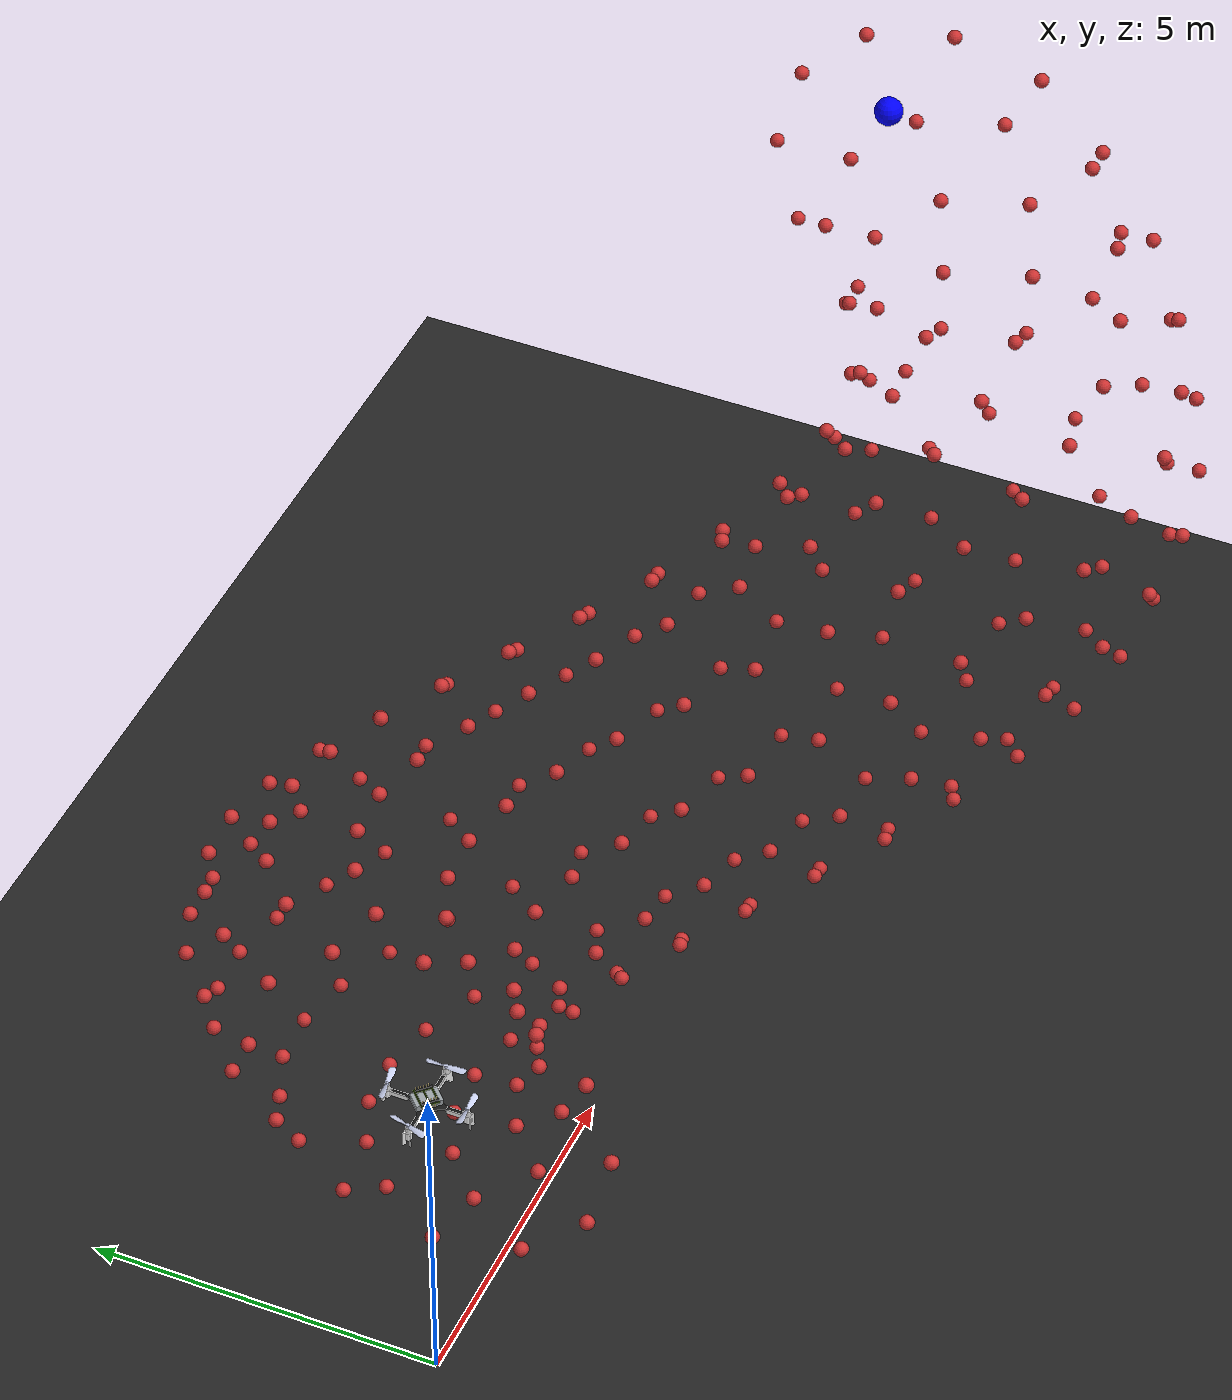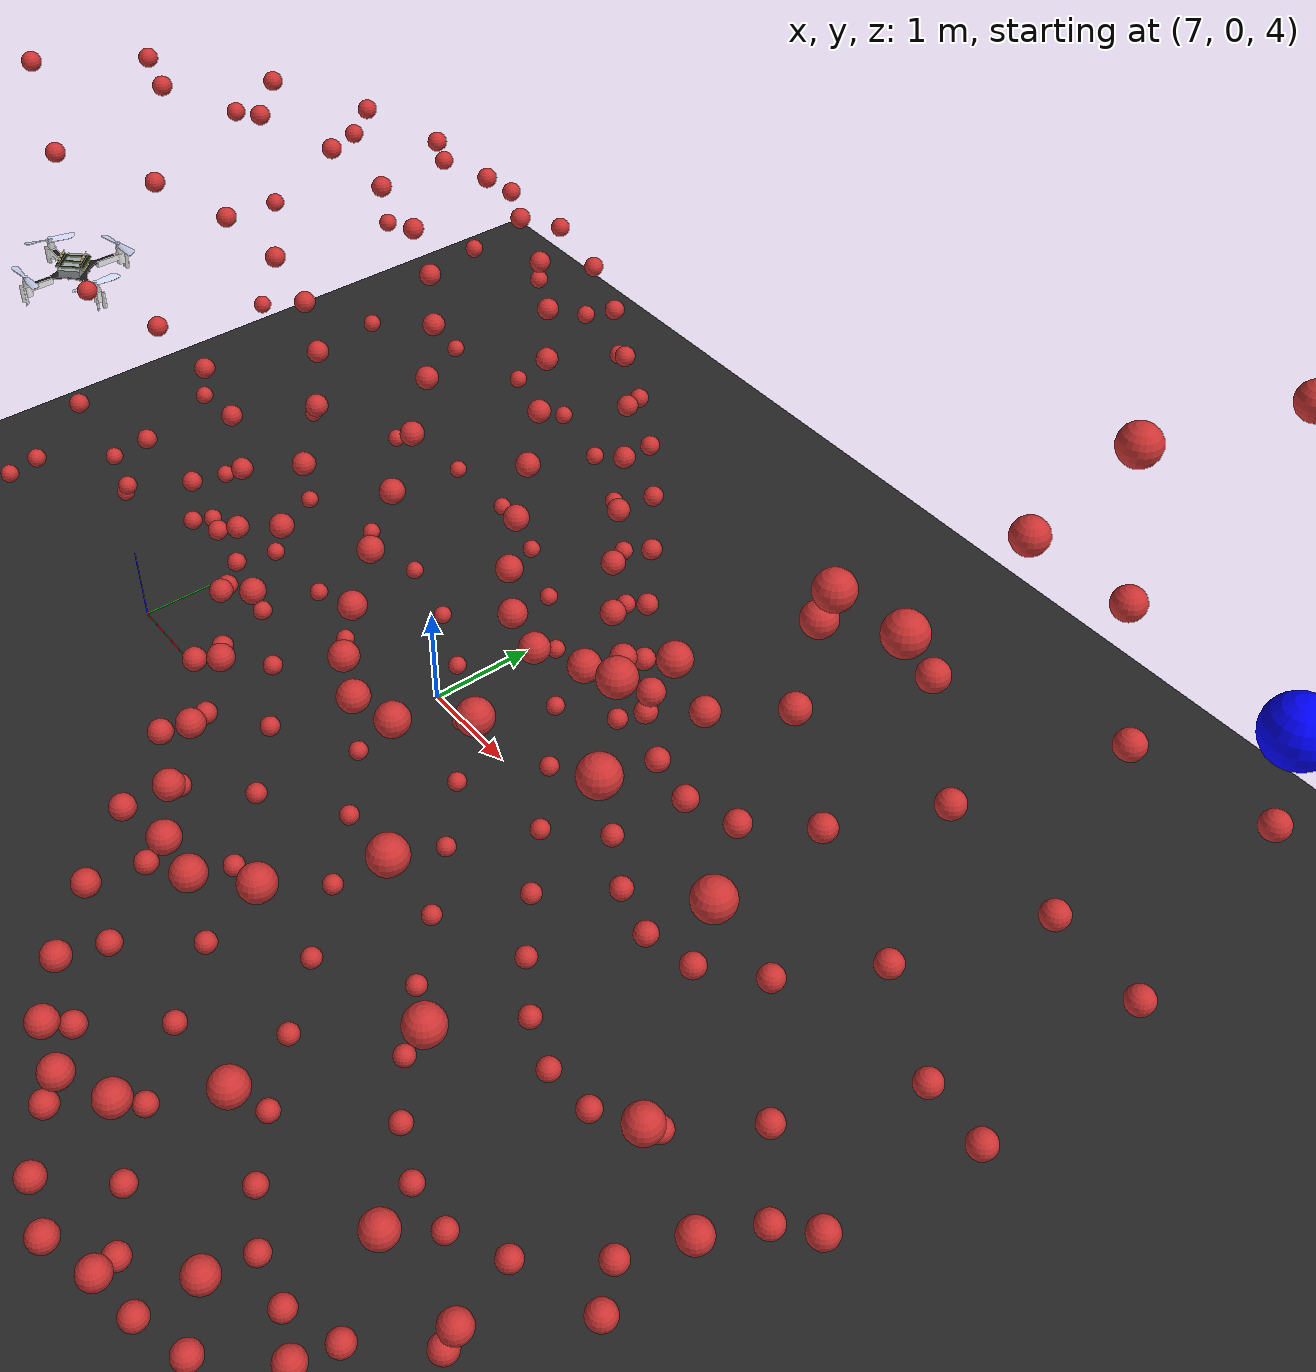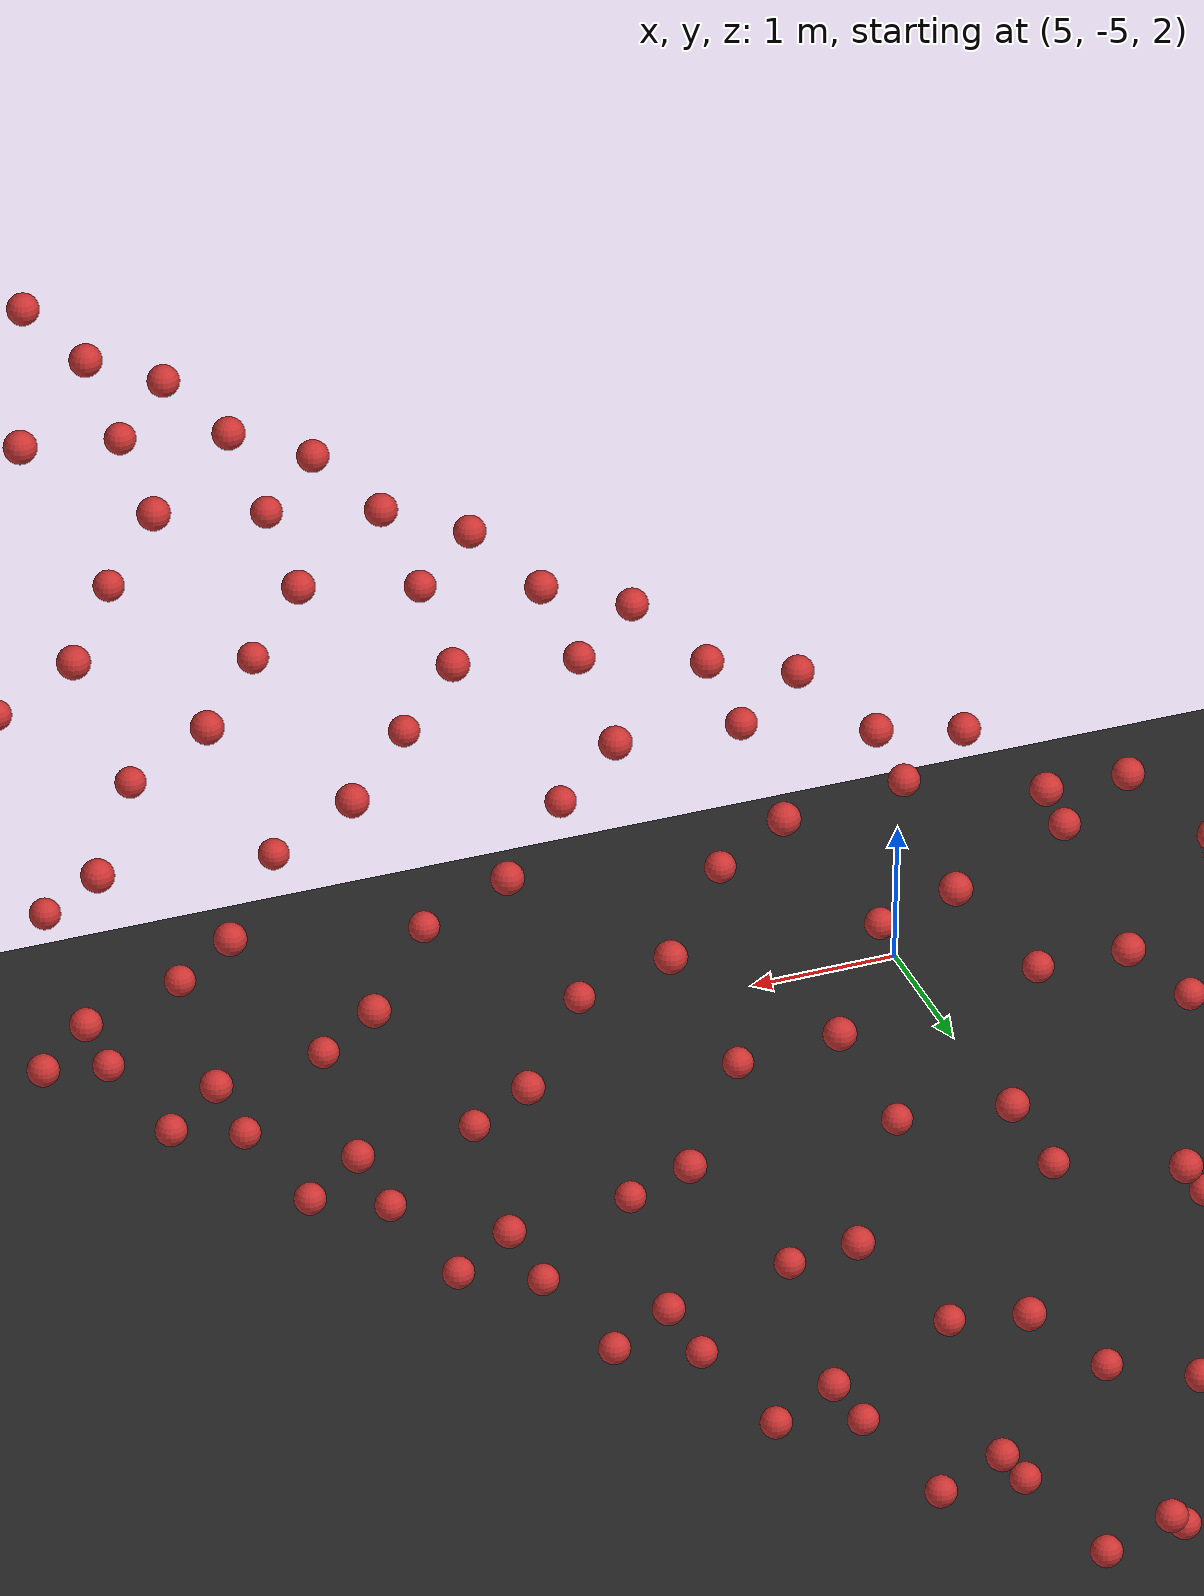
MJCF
<?xml version="1.0" ?>
<mujoco model="CF2 scene">

  <include file="cf2.xml"/>

  <statistic center="0 0 0.1" extent="0.2" meansize=".05"/>

  <visual>

    <rgba haze="0.15 0.25 0.35 0"/>

    <global azimuth="-20" elevation="-20" ellipsoidinertia="true"/>

    <map zfar="1000"/>

  </visual>

  <asset>

    <texture type="skybox" builtin="gradient" rgb1="0.3 0.5 0.7" rgb2="0 0 0" width="512" height="3072"/>

    <texture type="2d" name="groundplane" builtin="checker" mark="edge" rgb1="0.1 0.1 0.1" rgb2="0.2 0.2 0.2" markrgb="0.8 0.8 0.8" width="300" height="300"/>

    <material name="groundplane" texture="groundplane" texuniform="true" texrepeat="5 5" reflectance="0.1"/>

  </asset>

  <worldbody>

    <light diffuse="1 1 1" ambient="1 1 1" pos="0 0 100" dir="0 0 -1" directional="false"/>

    <geom name="floor" size="0 0 0.05" type="plane" material="groundplane"/>

    <site name="x_axis" size="0.005" type="cylinder" fromto="0 0 0 1 0 0" rgba="1 0 0 1"/>

    <site name="y_axis" size="0.005" type="cylinder" fromto="0 0 0 0 1 0" rgba="0 1 0 1"/>

    <site name="z_axis" size="0.005" type="cylinder" fromto="0 0 0 0 0 1" rgba="0 0 1 1"/>

    <site name="target" size="0.2" type="sphere" pos="15 0 10" rgba="0 0 1 1"/>

    <camera name="cam_aux" pos="-3.429 -18.876 13.649" xyaxes="0.874 -0.486 -0.000 0.179 0.321 0.930"/>

    <body name="sphere_0_0" pos="0.0 2.5 5.0">
      <geom type="sphere" size="0.1" rgba="0.8 0.2 0.2 1"/>
    </body>
    <body name="sphere_0_1" pos="0.0 2.165063509461097 6.25">
      <geom type="sphere" size="0.1" rgba="0.8 0.2 0.2 1"/>
    </body>
    <body name="sphere_0_2" pos="0.0 1.2500000000000002 7.165063509461096">
      <geom type="sphere" size="0.1" rgba="0.8 0.2 0.2 1"/>
    </body>
    <body name="sphere_0_3" pos="0.0 1.5308084989341916e-16 7.5">
      <geom type="sphere" size="0.1" rgba="0.8 0.2 0.2 1"/>
    </body>
    <body name="sphere_0_4" pos="0.0 -1.2499999999999996 7.165063509461097">
      <geom type="sphere" size="0.1" rgba="0.8 0.2 0.2 1"/>
    </body>
    <body name="sphere_0_5" pos="0.0 -2.165063509461097 6.25">
      <geom type="sphere" size="0.1" rgba="0.8 0.2 0.2 1"/>
    </body>
    <body name="sphere_0_6" pos="0.0 -2.5 5.0">
      <geom type="sphere" size="0.1" rgba="0.8 0.2 0.2 1"/>
    </body>
    <body name="sphere_0_7" pos="0.0 -2.1650635094610973 3.750000000000001">
      <geom type="sphere" size="0.1" rgba="0.8 0.2 0.2 1"/>
    </body>
    <body name="sphere_0_8" pos="0.0 -1.250000000000001 2.834936490538904">
      <geom type="sphere" size="0.1" rgba="0.8 0.2 0.2 1"/>
    </body>
    <body name="sphere_0_9" pos="0.0 -4.592425496802574e-16 2.5">
      <geom type="sphere" size="0.1" rgba="0.8 0.2 0.2 1"/>
    </body>
    <body name="sphere_0_10" pos="0.0 1.2500000000000002 2.8349364905389036">
      <geom type="sphere" size="0.1" rgba="0.8 0.2 0.2 1"/>
    </body>
    <body name="sphere_0_11" pos="0.0 2.165063509461096 3.749999999999999">
      <geom type="sphere" size="0.1" rgba="0.8 0.2 0.2 1"/>
    </body>
    <body name="sphere_1_0" pos="0.7648415591482625 3.5201185407796975 4.727449992218893">
      <geom type="sphere" size="0.1" rgba="0.8 0.2 0.2 1"/>
    </body>
    <body name="sphere_1_1" pos="0.7648415591482625 3.1851820502407944 5.977449992218893">
      <geom type="sphere" size="0.1" rgba="0.8 0.2 0.2 1"/>
    </body>
    <body name="sphere_1_2" pos="0.7648415591482625 2.2701185407796975 6.892513501679989">
      <geom type="sphere" size="0.1" rgba="0.8 0.2 0.2 1"/>
    </body>
    <body name="sphere_1_3" pos="0.7648415591482625 1.0201185407796978 7.227449992218893">
      <geom type="sphere" size="0.1" rgba="0.8 0.2 0.2 1"/>
    </body>
    <body name="sphere_1_4" pos="0.7648415591482625 -0.229881459220302 6.892513501679989">
      <geom type="sphere" size="0.1" rgba="0.8 0.2 0.2 1"/>
    </body>
    <body name="sphere_1_5" pos="0.7648415591482625 -1.1449449686813993 5.977449992218893">
      <geom type="sphere" size="0.1" rgba="0.8 0.2 0.2 1"/>
    </body>
    <body name="sphere_1_6" pos="0.7648415591482625 -1.4798814592203025 4.727449992218893">
      <geom type="sphere" size="0.1" rgba="0.8 0.2 0.2 1"/>
    </body>
    <body name="sphere_1_7" pos="0.7648415591482625 -1.1449449686813997 3.4774499922188937">
      <geom type="sphere" size="0.1" rgba="0.8 0.2 0.2 1"/>
    </body>
    <body name="sphere_1_8" pos="0.7648415591482625 -0.22988145922030356 2.562386482757797">
      <geom type="sphere" size="0.1" rgba="0.8 0.2 0.2 1"/>
    </body>
    <body name="sphere_1_9" pos="0.7648415591482625 1.020118540779697 2.227449992218893">
      <geom type="sphere" size="0.1" rgba="0.8 0.2 0.2 1"/>
    </body>
    <body name="sphere_1_10" pos="0.7648415591482625 2.2701185407796975 2.5623864827577965">
      <geom type="sphere" size="0.1" rgba="0.8 0.2 0.2 1"/>
    </body>
    <body name="sphere_1_11" pos="0.7648415591482625 3.1851820502407935 3.477449992218892">
      <geom type="sphere" size="0.1" rgba="0.8 0.2 0.2 1"/>
    </body>
    <body name="sphere_2_0" pos="1.5426688062133425 4.1840582129838335 4.5153452698601155">
      <geom type="sphere" size="0.1" rgba="0.8 0.2 0.2 1"/>
    </body>
    <body name="sphere_2_1" pos="1.5426688062133425 3.84912172244493 5.7653452698601155">
      <geom type="sphere" size="0.1" rgba="0.8 0.2 0.2 1"/>
    </body>
    <body name="sphere_2_2" pos="1.5426688062133425 2.9340582129838335 6.680408779321212">
      <geom type="sphere" size="0.1" rgba="0.8 0.2 0.2 1"/>
    </body>
    <body name="sphere_2_3" pos="1.5426688062133425 1.6840582129838333 7.0153452698601155">
      <geom type="sphere" size="0.1" rgba="0.8 0.2 0.2 1"/>
    </body>
    <body name="sphere_2_4" pos="1.5426688062133425 0.4340582129838335 6.680408779321212">
      <geom type="sphere" size="0.1" rgba="0.8 0.2 0.2 1"/>
    </body>
    <body name="sphere_2_5" pos="1.5426688062133425 -0.48100529647726376 5.7653452698601155">
      <geom type="sphere" size="0.1" rgba="0.8 0.2 0.2 1"/>
    </body>
    <body name="sphere_2_6" pos="1.5426688062133425 -0.8159417870161669 4.5153452698601155">
      <geom type="sphere" size="0.1" rgba="0.8 0.2 0.2 1"/>
    </body>
    <body name="sphere_2_7" pos="1.5426688062133425 -0.4810052964772642 3.2653452698601164">
      <geom type="sphere" size="0.1" rgba="0.8 0.2 0.2 1"/>
    </body>
    <body name="sphere_2_8" pos="1.5426688062133425 0.43405821298383196 2.3502817603990196">
      <geom type="sphere" size="0.1" rgba="0.8 0.2 0.2 1"/>
    </body>
    <body name="sphere_2_9" pos="1.5426688062133425 1.6840582129838326 2.0153452698601155">
      <geom type="sphere" size="0.1" rgba="0.8 0.2 0.2 1"/>
    </body>
    <body name="sphere_2_10" pos="1.5426688062133425 2.9340582129838335 2.350281760399019">
      <geom type="sphere" size="0.1" rgba="0.8 0.2 0.2 1"/>
    </body>
    <body name="sphere_2_11" pos="1.5426688062133425 3.849121722444929 3.2653452698601146">
      <geom type="sphere" size="0.1" rgba="0.8 0.2 0.2 1"/>
    </body>
    <body name="sphere_3_0" pos="2.3311628683529513 4.533558727773604 4.362912875309569">
      <geom type="sphere" size="0.1" rgba="0.8 0.2 0.2 1"/>
    </body>
    <body name="sphere_3_1" pos="2.3311628683529513 4.1986222372347015 5.612912875309569">
      <geom type="sphere" size="0.1" rgba="0.8 0.2 0.2 1"/>
    </body>
    <body name="sphere_3_2" pos="2.3311628683529513 3.283558727773605 6.527976384770666">
      <geom type="sphere" size="0.1" rgba="0.8 0.2 0.2 1"/>
    </body>
    <body name="sphere_3_3" pos="2.3311628683529513 2.0335587277736047 6.862912875309569">
      <geom type="sphere" size="0.1" rgba="0.8 0.2 0.2 1"/>
    </body>
    <body name="sphere_3_4" pos="2.3311628683529513 0.7835587277736051 6.527976384770666">
      <geom type="sphere" size="0.1" rgba="0.8 0.2 0.2 1"/>
    </body>
    <body name="sphere_3_5" pos="2.3311628683529513 -0.13150478168749213 5.612912875309569">
      <geom type="sphere" size="0.1" rgba="0.8 0.2 0.2 1"/>
    </body>
    <body name="sphere_3_6" pos="2.3311628683529513 -0.4664412722263953 4.362912875309569">
      <geom type="sphere" size="0.1" rgba="0.8 0.2 0.2 1"/>
    </body>
    <body name="sphere_3_7" pos="2.3311628683529513 -0.13150478168749258 3.1129128753095703">
      <geom type="sphere" size="0.1" rgba="0.8 0.2 0.2 1"/>
    </body>
    <body name="sphere_3_8" pos="2.3311628683529513 0.7835587277736036 2.1978493658484735">
      <geom type="sphere" size="0.1" rgba="0.8 0.2 0.2 1"/>
    </body>
    <body name="sphere_3_9" pos="2.3311628683529513 2.0335587277736042 1.8629128753095694">
      <geom type="sphere" size="0.1" rgba="0.8 0.2 0.2 1"/>
    </body>
    <body name="sphere_3_10" pos="2.3311628683529513 3.283558727773605 2.197849365848473">
      <geom type="sphere" size="0.1" rgba="0.8 0.2 0.2 1"/>
    </body>
    <body name="sphere_3_11" pos="2.3311628683529513 4.198622237234701 3.1129128753095685">
      <geom type="sphere" size="0.1" rgba="0.8 0.2 0.2 1"/>
    </body>
    <body name="sphere_4_0" pos="3.1280048727247993 4.61035979631021 4.26937985095316">
      <geom type="sphere" size="0.1" rgba="0.8 0.2 0.2 1"/>
    </body>
    <body name="sphere_4_1" pos="3.1280048727247993 4.275423305771307 5.51937985095316">
      <geom type="sphere" size="0.1" rgba="0.8 0.2 0.2 1"/>
    </body>
    <body name="sphere_4_2" pos="3.1280048727247993 3.3603597963102096 6.434443360414257">
      <geom type="sphere" size="0.1" rgba="0.8 0.2 0.2 1"/>
    </body>
    <body name="sphere_4_3" pos="3.1280048727247993 2.1103597963102096 6.76937985095316">
      <geom type="sphere" size="0.1" rgba="0.8 0.2 0.2 1"/>
    </body>
    <body name="sphere_4_4" pos="3.1280048727247993 0.8603597963102101 6.434443360414257">
      <geom type="sphere" size="0.1" rgba="0.8 0.2 0.2 1"/>
    </body>
    <body name="sphere_4_5" pos="3.1280048727247993 -0.05470371315088718 5.51937985095316">
      <geom type="sphere" size="0.1" rgba="0.8 0.2 0.2 1"/>
    </body>
    <body name="sphere_4_6" pos="3.1280048727247993 -0.38964020368979035 4.26937985095316">
      <geom type="sphere" size="0.1" rgba="0.8 0.2 0.2 1"/>
    </body>
    <body name="sphere_4_7" pos="3.1280048727247993 -0.05470371315088762 3.019379850953161">
      <geom type="sphere" size="0.1" rgba="0.8 0.2 0.2 1"/>
    </body>
    <body name="sphere_4_8" pos="3.1280048727247993 0.8603597963102085 2.1043163414920643">
      <geom type="sphere" size="0.1" rgba="0.8 0.2 0.2 1"/>
    </body>
    <body name="sphere_4_9" pos="3.1280048727247993 2.110359796310209 1.7693798509531602">
      <geom type="sphere" size="0.1" rgba="0.8 0.2 0.2 1"/>
    </body>
    <body name="sphere_4_10" pos="3.1280048727247993 3.3603597963102096 2.104316341492064">
      <geom type="sphere" size="0.1" rgba="0.8 0.2 0.2 1"/>
    </body>
    <body name="sphere_4_11" pos="3.1280048727247993 4.275423305771305 3.0193798509531593">
      <geom type="sphere" size="0.1" rgba="0.8 0.2 0.2 1"/>
    </body>
    <body name="sphere_5_0" pos="3.9308759464865983 4.456201129754848 4.233973239176789">
      <geom type="sphere" size="0.1" rgba="0.8 0.2 0.2 1"/>
    </body>
    <body name="sphere_5_1" pos="3.9308759464865983 4.121264639215945 5.483973239176789">
      <geom type="sphere" size="0.1" rgba="0.8 0.2 0.2 1"/>
    </body>
    <body name="sphere_5_2" pos="3.9308759464865983 3.2062011297548483 6.399036748637886">
      <geom type="sphere" size="0.1" rgba="0.8 0.2 0.2 1"/>
    </body>
    <body name="sphere_5_3" pos="3.9308759464865983 1.9562011297548483 6.733973239176789">
      <geom type="sphere" size="0.1" rgba="0.8 0.2 0.2 1"/>
    </body>
    <body name="sphere_5_4" pos="3.9308759464865983 0.7062011297548485 6.3990367486378865">
      <geom type="sphere" size="0.1" rgba="0.8 0.2 0.2 1"/>
    </body>
    <body name="sphere_5_5" pos="3.9308759464865983 -0.20886237970624877 5.483973239176789">
      <geom type="sphere" size="0.1" rgba="0.8 0.2 0.2 1"/>
    </body>
    <body name="sphere_5_6" pos="3.9308759464865983 -0.5437988702451519 4.233973239176789">
      <geom type="sphere" size="0.1" rgba="0.8 0.2 0.2 1"/>
    </body>
    <body name="sphere_5_7" pos="3.9308759464865983 -0.2088623797062492 2.98397323917679">
      <geom type="sphere" size="0.1" rgba="0.8 0.2 0.2 1"/>
    </body>
    <body name="sphere_5_8" pos="3.9308759464865983 0.706201129754847 2.0689097297156933">
      <geom type="sphere" size="0.1" rgba="0.8 0.2 0.2 1"/>
    </body>
    <body name="sphere_5_9" pos="3.9308759464865983 1.9562011297548476 1.7339732391767892">
      <geom type="sphere" size="0.1" rgba="0.8 0.2 0.2 1"/>
    </body>
    <body name="sphere_5_10" pos="3.9308759464865983 3.2062011297548483 2.068909729715693">
      <geom type="sphere" size="0.1" rgba="0.8 0.2 0.2 1"/>
    </body>
    <body name="sphere_5_11" pos="3.9308759464865983 4.121264639215944 2.9839732391767884">
      <geom type="sphere" size="0.1" rgba="0.8 0.2 0.2 1"/>
    </body>
    <body name="sphere_6_0" pos="4.73745721679606 4.1128224392687205 4.255920082366364">
      <geom type="sphere" size="0.1" rgba="0.8 0.2 0.2 1"/>
    </body>
    <body name="sphere_6_1" pos="4.73745721679606 3.7778859487298173 5.505920082366364">
      <geom type="sphere" size="0.1" rgba="0.8 0.2 0.2 1"/>
    </body>
    <body name="sphere_6_2" pos="4.73745721679606 2.8628224392687205 6.4209835918274605">
      <geom type="sphere" size="0.1" rgba="0.8 0.2 0.2 1"/>
    </body>
    <body name="sphere_6_3" pos="4.73745721679606 1.6128224392687207 6.755920082366364">
      <geom type="sphere" size="0.1" rgba="0.8 0.2 0.2 1"/>
    </body>
    <body name="sphere_6_4" pos="4.73745721679606 0.36282243926872093 6.420983591827461">
      <geom type="sphere" size="0.1" rgba="0.8 0.2 0.2 1"/>
    </body>
    <body name="sphere_6_5" pos="4.73745721679606 -0.5522410701923763 5.505920082366364">
      <geom type="sphere" size="0.1" rgba="0.8 0.2 0.2 1"/>
    </body>
    <body name="sphere_6_6" pos="4.73745721679606 -0.8871775607312795 4.255920082366364">
      <geom type="sphere" size="0.1" rgba="0.8 0.2 0.2 1"/>
    </body>
    <body name="sphere_6_7" pos="4.73745721679606 -0.5522410701923768 3.005920082366365">
      <geom type="sphere" size="0.1" rgba="0.8 0.2 0.2 1"/>
    </body>
    <body name="sphere_6_8" pos="4.73745721679606 0.3628224392687194 2.090856572905268">
      <geom type="sphere" size="0.1" rgba="0.8 0.2 0.2 1"/>
    </body>
    <body name="sphere_6_9" pos="4.73745721679606 1.61282243926872 1.755920082366364">
      <geom type="sphere" size="0.1" rgba="0.8 0.2 0.2 1"/>
    </body>
    <body name="sphere_6_10" pos="4.73745721679606 2.8628224392687205 2.0908565729052677">
      <geom type="sphere" size="0.1" rgba="0.8 0.2 0.2 1"/>
    </body>
    <body name="sphere_6_11" pos="4.73745721679606 3.7778859487298164 3.005920082366363">
      <geom type="sphere" size="0.1" rgba="0.8 0.2 0.2 1"/>
    </body>
    <body name="sphere_7_0" pos="5.545429810810894 3.621963436013022 4.334447422907783">
      <geom type="sphere" size="0.1" rgba="0.8 0.2 0.2 1"/>
    </body>
    <body name="sphere_7_1" pos="5.545429810810894 3.287026945474119 5.584447422907783">
      <geom type="sphere" size="0.1" rgba="0.8 0.2 0.2 1"/>
    </body>
    <body name="sphere_7_2" pos="5.545429810810894 2.371963436013022 6.49951093236888">
      <geom type="sphere" size="0.1" rgba="0.8 0.2 0.2 1"/>
    </body>
    <body name="sphere_7_3" pos="5.545429810810894 1.1219634360130224 6.834447422907783">
      <geom type="sphere" size="0.1" rgba="0.8 0.2 0.2 1"/>
    </body>
    <body name="sphere_7_4" pos="5.545429810810894 -0.12803656398697738 6.49951093236888">
      <geom type="sphere" size="0.1" rgba="0.8 0.2 0.2 1"/>
    </body>
    <body name="sphere_7_5" pos="5.545429810810894 -1.0431000734480746 5.584447422907783">
      <geom type="sphere" size="0.1" rgba="0.8 0.2 0.2 1"/>
    </body>
    <body name="sphere_7_6" pos="5.545429810810894 -1.3780365639869778 4.334447422907783">
      <geom type="sphere" size="0.1" rgba="0.8 0.2 0.2 1"/>
    </body>
    <body name="sphere_7_7" pos="5.545429810810894 -1.043100073448075 3.0844474229077843">
      <geom type="sphere" size="0.1" rgba="0.8 0.2 0.2 1"/>
    </body>
    <body name="sphere_7_8" pos="5.545429810810894 -0.12803656398697894 2.1693839134466875">
      <geom type="sphere" size="0.1" rgba="0.8 0.2 0.2 1"/>
    </body>
    <body name="sphere_7_9" pos="5.545429810810894 1.1219634360130217 1.8344474229077834">
      <geom type="sphere" size="0.1" rgba="0.8 0.2 0.2 1"/>
    </body>
    <body name="sphere_7_10" pos="5.545429810810894 2.371963436013022 2.169383913446687">
      <geom type="sphere" size="0.1" rgba="0.8 0.2 0.2 1"/>
    </body>
    <body name="sphere_7_11" pos="5.545429810810894 3.287026945474118 3.0844474229077825">
      <geom type="sphere" size="0.1" rgba="0.8 0.2 0.2 1"/>
    </body>
    <body name="sphere_8_0" pos="6.352474855688814 3.0253638311489555 4.468782303186957">
      <geom type="sphere" size="0.1" rgba="0.8 0.2 0.2 1"/>
    </body>
    <body name="sphere_8_1" pos="6.352474855688814 2.6904273406100523 5.718782303186957">
      <geom type="sphere" size="0.1" rgba="0.8 0.2 0.2 1"/>
    </body>
    <body name="sphere_8_2" pos="6.352474855688814 1.7753638311489557 6.633845812648054">
      <geom type="sphere" size="0.1" rgba="0.8 0.2 0.2 1"/>
    </body>
    <body name="sphere_8_3" pos="6.352474855688814 0.5253638311489556 6.968782303186957">
      <geom type="sphere" size="0.1" rgba="0.8 0.2 0.2 1"/>
    </body>
    <body name="sphere_8_4" pos="6.352474855688814 -0.7246361688510441 6.633845812648055">
      <geom type="sphere" size="0.1" rgba="0.8 0.2 0.2 1"/>
    </body>
    <body name="sphere_8_5" pos="6.352474855688814 -1.6396996783121414 5.718782303186957">
      <geom type="sphere" size="0.1" rgba="0.8 0.2 0.2 1"/>
    </body>
    <body name="sphere_8_6" pos="6.352474855688814 -1.9746361688510445 4.468782303186957">
      <geom type="sphere" size="0.1" rgba="0.8 0.2 0.2 1"/>
    </body>
    <body name="sphere_8_7" pos="6.352474855688814 -1.6396996783121418 3.2187823031869582">
      <geom type="sphere" size="0.1" rgba="0.8 0.2 0.2 1"/>
    </body>
    <body name="sphere_8_8" pos="6.352474855688814 -0.7246361688510456 2.3037187937258614">
      <geom type="sphere" size="0.1" rgba="0.8 0.2 0.2 1"/>
    </body>
    <body name="sphere_8_9" pos="6.352474855688814 0.525363831148955 1.9687823031869573">
      <geom type="sphere" size="0.1" rgba="0.8 0.2 0.2 1"/>
    </body>
    <body name="sphere_8_10" pos="6.352474855688814 1.7753638311489557 2.303718793725861">
      <geom type="sphere" size="0.1" rgba="0.8 0.2 0.2 1"/>
    </body>
    <body name="sphere_8_11" pos="6.352474855688814 2.6904273406100514 3.2187823031869565">
      <geom type="sphere" size="0.1" rgba="0.8 0.2 0.2 1"/>
    </body>
    <body name="sphere_9_0" pos="7.156273478587526 2.364763335837716 4.658151765589781">
      <geom type="sphere" size="0.1" rgba="0.8 0.2 0.2 1"/>
    </body>
    <body name="sphere_9_1" pos="7.156273478587526 2.0298268452988126 5.908151765589781">
      <geom type="sphere" size="0.1" rgba="0.8 0.2 0.2 1"/>
    </body>
    <body name="sphere_9_2" pos="7.156273478587526 1.114763335837716 6.823215275050877">
      <geom type="sphere" size="0.1" rgba="0.8 0.2 0.2 1"/>
    </body>
    <body name="sphere_9_3" pos="7.156273478587526 -0.13523666416228403 7.158151765589781">
      <geom type="sphere" size="0.1" rgba="0.8 0.2 0.2 1"/>
    </body>
    <body name="sphere_9_4" pos="7.156273478587526 -1.3852366641622837 6.823215275050877">
      <geom type="sphere" size="0.1" rgba="0.8 0.2 0.2 1"/>
    </body>
    <body name="sphere_9_5" pos="7.156273478587526 -2.300300173623381 5.908151765589781">
      <geom type="sphere" size="0.1" rgba="0.8 0.2 0.2 1"/>
    </body>
    <body name="sphere_9_6" pos="7.156273478587526 -2.635236664162284 4.658151765589781">
      <geom type="sphere" size="0.1" rgba="0.8 0.2 0.2 1"/>
    </body>
    <body name="sphere_9_7" pos="7.156273478587526 -2.3003001736233815 3.408151765589782">
      <geom type="sphere" size="0.1" rgba="0.8 0.2 0.2 1"/>
    </body>
    <body name="sphere_9_8" pos="7.156273478587526 -1.3852366641622853 2.493088256128685">
      <geom type="sphere" size="0.1" rgba="0.8 0.2 0.2 1"/>
    </body>
    <body name="sphere_9_9" pos="7.156273478587526 -0.13523666416228466 2.158151765589781">
      <geom type="sphere" size="0.1" rgba="0.8 0.2 0.2 1"/>
    </body>
    <body name="sphere_9_10" pos="7.156273478587526 1.114763335837716 2.4930882561286847">
      <geom type="sphere" size="0.1" rgba="0.8 0.2 0.2 1"/>
    </body>
    <body name="sphere_9_11" pos="7.156273478587526 2.0298268452988117 3.40815176558978">
      <geom type="sphere" size="0.1" rgba="0.8 0.2 0.2 1"/>
    </body>
    <body name="sphere_10_0" pos="7.954506806664751 1.6819016612405036 4.901782852502167">
      <geom type="sphere" size="0.1" rgba="0.8 0.2 0.2 1"/>
    </body>
    <body name="sphere_10_1" pos="7.954506806664751 1.3469651707016004 6.151782852502167">
      <geom type="sphere" size="0.1" rgba="0.8 0.2 0.2 1"/>
    </body>
    <body name="sphere_10_2" pos="7.954506806664751 0.4319016612405038 7.066846361963264">
      <geom type="sphere" size="0.1" rgba="0.8 0.2 0.2 1"/>
    </body>
    <body name="sphere_10_3" pos="7.954506806664751 -0.8180983387594963 7.401782852502167">
      <geom type="sphere" size="0.1" rgba="0.8 0.2 0.2 1"/>
    </body>
    <body name="sphere_10_4" pos="7.954506806664751 -2.068098338759496 7.066846361963265">
      <geom type="sphere" size="0.1" rgba="0.8 0.2 0.2 1"/>
    </body>
    <body name="sphere_10_5" pos="7.954506806664751 -2.9831618482205933 6.151782852502167">
      <geom type="sphere" size="0.1" rgba="0.8 0.2 0.2 1"/>
    </body>
    <body name="sphere_10_6" pos="7.954506806664751 -3.3180983387594964 4.901782852502167">
      <geom type="sphere" size="0.1" rgba="0.8 0.2 0.2 1"/>
    </body>
    <body name="sphere_10_7" pos="7.954506806664751 -2.9831618482205937 3.6517828525021683">
      <geom type="sphere" size="0.1" rgba="0.8 0.2 0.2 1"/>
    </body>
    <body name="sphere_10_8" pos="7.954506806664751 -2.068098338759498 2.7367193430410715">
      <geom type="sphere" size="0.1" rgba="0.8 0.2 0.2 1"/>
    </body>
    <body name="sphere_10_9" pos="7.954506806664751 -0.8180983387594969 2.4017828525021674">
      <geom type="sphere" size="0.1" rgba="0.8 0.2 0.2 1"/>
    </body>
    <body name="sphere_10_10" pos="7.954506806664751 0.4319016612405038 2.736719343041071">
      <geom type="sphere" size="0.1" rgba="0.8 0.2 0.2 1"/>
    </body>
    <body name="sphere_10_11" pos="7.954506806664751 1.3469651707015995 3.6517828525021665">
      <geom type="sphere" size="0.1" rgba="0.8 0.2 0.2 1"/>
    </body>
    <body name="sphere_11_0" pos="8.744855967078191 1.0185185185185186 5.198902606310014">
      <geom type="sphere" size="0.1" rgba="0.8 0.2 0.2 1"/>
    </body>
    <body name="sphere_11_1" pos="8.744855967078191 0.6835820279796154 6.448902606310014">
      <geom type="sphere" size="0.1" rgba="0.8 0.2 0.2 1"/>
    </body>
    <body name="sphere_11_2" pos="8.744855967078191 -0.23148148148148118 7.3639661157711105">
      <geom type="sphere" size="0.1" rgba="0.8 0.2 0.2 1"/>
    </body>
    <body name="sphere_11_3" pos="8.744855967078191 -1.4814814814814812 7.698902606310014">
      <geom type="sphere" size="0.1" rgba="0.8 0.2 0.2 1"/>
    </body>
    <body name="sphere_11_4" pos="8.744855967078191 -2.731481481481481 7.363966115771111">
      <geom type="sphere" size="0.1" rgba="0.8 0.2 0.2 1"/>
    </body>
    <body name="sphere_11_5" pos="8.744855967078191 -3.6465449909425782 6.448902606310014">
      <geom type="sphere" size="0.1" rgba="0.8 0.2 0.2 1"/>
    </body>
    <body name="sphere_11_6" pos="8.744855967078191 -3.9814814814814814 5.198902606310014">
      <geom type="sphere" size="0.1" rgba="0.8 0.2 0.2 1"/>
    </body>
    <body name="sphere_11_7" pos="8.744855967078191 -3.6465449909425787 3.948902606310015">
      <geom type="sphere" size="0.1" rgba="0.8 0.2 0.2 1"/>
    </body>
    <body name="sphere_11_8" pos="8.744855967078191 -2.7314814814814827 3.033839096848918">
      <geom type="sphere" size="0.1" rgba="0.8 0.2 0.2 1"/>
    </body>
    <body name="sphere_11_9" pos="8.744855967078191 -1.4814814814814818 2.698902606310014">
      <geom type="sphere" size="0.1" rgba="0.8 0.2 0.2 1"/>
    </body>
    <body name="sphere_11_10" pos="8.744855967078191 -0.23148148148148118 3.0338390968489177">
      <geom type="sphere" size="0.1" rgba="0.8 0.2 0.2 1"/>
    </body>
    <body name="sphere_11_11" pos="8.744855967078191 0.6835820279796145 3.948902606310013">
      <geom type="sphere" size="0.1" rgba="0.8 0.2 0.2 1"/>
    </body>
    <body name="sphere_12_0" pos="9.525002086985559 0.41635361883295774 5.548738069399227">
      <geom type="sphere" size="0.1" rgba="0.8 0.2 0.2 1"/>
    </body>
    <body name="sphere_12_1" pos="9.525002086985559 0.08141712829405456 6.798738069399227">
      <geom type="sphere" size="0.1" rgba="0.8 0.2 0.2 1"/>
    </body>
    <body name="sphere_12_2" pos="9.525002086985559 -0.833646381167042 7.713801578860323">
      <geom type="sphere" size="0.1" rgba="0.8 0.2 0.2 1"/>
    </body>
    <body name="sphere_12_3" pos="9.525002086985559 -2.0836463811670423 8.048738069399228">
      <geom type="sphere" size="0.1" rgba="0.8 0.2 0.2 1"/>
    </body>
    <body name="sphere_12_4" pos="9.525002086985559 -3.333646381167042 7.713801578860323">
      <geom type="sphere" size="0.1" rgba="0.8 0.2 0.2 1"/>
    </body>
    <body name="sphere_12_5" pos="9.525002086985559 -4.248709890628139 6.798738069399227">
      <geom type="sphere" size="0.1" rgba="0.8 0.2 0.2 1"/>
    </body>
    <body name="sphere_12_6" pos="9.525002086985559 -4.583646381167043 5.548738069399227">
      <geom type="sphere" size="0.1" rgba="0.8 0.2 0.2 1"/>
    </body>
    <body name="sphere_12_7" pos="9.525002086985559 -4.24870989062814 4.298738069399228">
      <geom type="sphere" size="0.1" rgba="0.8 0.2 0.2 1"/>
    </body>
    <body name="sphere_12_8" pos="9.525002086985559 -3.3336463811670436 3.383674559938131">
      <geom type="sphere" size="0.1" rgba="0.8 0.2 0.2 1"/>
    </body>
    <body name="sphere_12_9" pos="9.525002086985559 -2.0836463811670427 3.048738069399227">
      <geom type="sphere" size="0.1" rgba="0.8 0.2 0.2 1"/>
    </body>
    <body name="sphere_12_10" pos="9.525002086985559 -0.833646381167042 3.3836745599381306">
      <geom type="sphere" size="0.1" rgba="0.8 0.2 0.2 1"/>
    </body>
    <body name="sphere_12_11" pos="9.525002086985559 0.08141712829405368 4.298738069399226">
      <geom type="sphere" size="0.1" rgba="0.8 0.2 0.2 1"/>
    </body>
    <body name="sphere_13_0" pos="10.292626293544568 -0.08285332665497958 5.950516284155709">
      <geom type="sphere" size="0.1" rgba="0.8 0.2 0.2 1"/>
    </body>
    <body name="sphere_13_1" pos="10.292626293544568 -0.41778981719388275 7.200516284155709">
      <geom type="sphere" size="0.1" rgba="0.8 0.2 0.2 1"/>
    </body>
    <body name="sphere_13_2" pos="10.292626293544568 -1.3328533266549794 8.115579793616806">
      <geom type="sphere" size="0.1" rgba="0.8 0.2 0.2 1"/>
    </body>
    <body name="sphere_13_3" pos="10.292626293544568 -2.5828533266549796 8.450516284155709">
      <geom type="sphere" size="0.1" rgba="0.8 0.2 0.2 1"/>
    </body>
    <body name="sphere_13_4" pos="10.292626293544568 -3.832853326654979 8.115579793616806">
      <geom type="sphere" size="0.1" rgba="0.8 0.2 0.2 1"/>
    </body>
    <body name="sphere_13_5" pos="10.292626293544568 -4.747916836116076 7.200516284155709">
      <geom type="sphere" size="0.1" rgba="0.8 0.2 0.2 1"/>
    </body>
    <body name="sphere_13_6" pos="10.292626293544568 -5.08285332665498 5.950516284155709">
      <geom type="sphere" size="0.1" rgba="0.8 0.2 0.2 1"/>
    </body>
    <body name="sphere_13_7" pos="10.292626293544568 -4.747916836116077 4.70051628415571">
      <geom type="sphere" size="0.1" rgba="0.8 0.2 0.2 1"/>
    </body>
    <body name="sphere_13_8" pos="10.292626293544568 -3.8328533266549805 3.785452774694613">
      <geom type="sphere" size="0.1" rgba="0.8 0.2 0.2 1"/>
    </body>
    <body name="sphere_13_9" pos="10.292626293544568 -2.58285332665498 3.450516284155709">
      <geom type="sphere" size="0.1" rgba="0.8 0.2 0.2 1"/>
    </body>
    <body name="sphere_13_10" pos="10.292626293544568 -1.3328533266549794 3.7854527746946127">
      <geom type="sphere" size="0.1" rgba="0.8 0.2 0.2 1"/>
    </body>
    <body name="sphere_13_11" pos="10.292626293544568 -0.41778981719388364 4.700516284155708">
      <geom type="sphere" size="0.1" rgba="0.8 0.2 0.2 1"/>
    </body>
    <body name="sphere_14_0" pos="11.045409713912928 -0.43736260678409433 6.403464292965364">
      <geom type="sphere" size="0.1" rgba="0.8 0.2 0.2 1"/>
    </body>
    <body name="sphere_14_1" pos="11.045409713912928 -0.7722990973229975 7.653464292965364">
      <geom type="sphere" size="0.1" rgba="0.8 0.2 0.2 1"/>
    </body>
    <body name="sphere_14_2" pos="11.045409713912928 -1.687362606784094 8.568527802426459">
      <geom type="sphere" size="0.1" rgba="0.8 0.2 0.2 1"/>
    </body>
    <body name="sphere_14_3" pos="11.045409713912928 -2.9373626067840943 8.903464292965364">
      <geom type="sphere" size="0.1" rgba="0.8 0.2 0.2 1"/>
    </body>
    <body name="sphere_14_4" pos="11.045409713912928 -4.187362606784093 8.56852780242646">
      <geom type="sphere" size="0.1" rgba="0.8 0.2 0.2 1"/>
    </body>
    <body name="sphere_14_5" pos="11.045409713912928 -5.102426116245191 7.653464292965364">
      <geom type="sphere" size="0.1" rgba="0.8 0.2 0.2 1"/>
    </body>
    <body name="sphere_14_6" pos="11.045409713912928 -5.437362606784094 6.403464292965364">
      <geom type="sphere" size="0.1" rgba="0.8 0.2 0.2 1"/>
    </body>
    <body name="sphere_14_7" pos="11.045409713912928 -5.102426116245192 5.1534642929653645">
      <geom type="sphere" size="0.1" rgba="0.8 0.2 0.2 1"/>
    </body>
    <body name="sphere_14_8" pos="11.045409713912928 -4.187362606784095 4.238400783504268">
      <geom type="sphere" size="0.1" rgba="0.8 0.2 0.2 1"/>
    </body>
    <body name="sphere_14_9" pos="11.045409713912928 -2.9373626067840948 3.9034642929653636">
      <geom type="sphere" size="0.1" rgba="0.8 0.2 0.2 1"/>
    </body>
    <body name="sphere_14_10" pos="11.045409713912928 -1.687362606784094 4.238400783504267">
      <geom type="sphere" size="0.1" rgba="0.8 0.2 0.2 1"/>
    </body>
    <body name="sphere_14_11" pos="11.045409713912928 -0.7722990973229984 5.153464292965363">
      <geom type="sphere" size="0.1" rgba="0.8 0.2 0.2 1"/>
    </body>
    <body name="sphere_15_0" pos="11.78103347524835 -0.605434510393188 6.906809138214097">
      <geom type="sphere" size="0.1" rgba="0.8 0.2 0.2 1"/>
    </body>
    <body name="sphere_15_1" pos="11.78103347524835 -0.9403710009320911 8.156809138214097">
      <geom type="sphere" size="0.1" rgba="0.8 0.2 0.2 1"/>
    </body>
    <body name="sphere_15_2" pos="11.78103347524835 -1.8554345103931877 9.071872647675193">
      <geom type="sphere" size="0.1" rgba="0.8 0.2 0.2 1"/>
    </body>
    <body name="sphere_15_3" pos="11.78103347524835 -3.105434510393188 9.406809138214097">
      <geom type="sphere" size="0.1" rgba="0.8 0.2 0.2 1"/>
    </body>
    <body name="sphere_15_4" pos="11.78103347524835 -4.355434510393188 9.071872647675194">
      <geom type="sphere" size="0.1" rgba="0.8 0.2 0.2 1"/>
    </body>
    <body name="sphere_15_5" pos="11.78103347524835 -5.270498019854285 8.156809138214097">
      <geom type="sphere" size="0.1" rgba="0.8 0.2 0.2 1"/>
    </body>
    <body name="sphere_15_6" pos="11.78103347524835 -5.605434510393188 6.906809138214097">
      <geom type="sphere" size="0.1" rgba="0.8 0.2 0.2 1"/>
    </body>
    <body name="sphere_15_7" pos="11.78103347524835 -5.270498019854285 5.656809138214098">
      <geom type="sphere" size="0.1" rgba="0.8 0.2 0.2 1"/>
    </body>
    <body name="sphere_15_8" pos="11.78103347524835 -4.355434510393189 4.7417456287530015">
      <geom type="sphere" size="0.1" rgba="0.8 0.2 0.2 1"/>
    </body>
    <body name="sphere_15_9" pos="11.78103347524835 -3.1054345103931884 4.406809138214097">
      <geom type="sphere" size="0.1" rgba="0.8 0.2 0.2 1"/>
    </body>
    <body name="sphere_15_10" pos="11.78103347524835 -1.8554345103931877 4.741745628753001">
      <geom type="sphere" size="0.1" rgba="0.8 0.2 0.2 1"/>
    </body>
    <body name="sphere_15_11" pos="11.78103347524835 -0.940371000932092 5.656809138214096">
      <geom type="sphere" size="0.1" rgba="0.8 0.2 0.2 1"/>
    </body>
    <body name="sphere_16_0" pos="12.49717870470855 -0.5453293263210619 7.459777862287811">
      <geom type="sphere" size="0.1" rgba="0.8 0.2 0.2 1"/>
    </body>
    <body name="sphere_16_1" pos="12.49717870470855 -0.8802658168599651 8.70977786228781">
      <geom type="sphere" size="0.1" rgba="0.8 0.2 0.2 1"/>
    </body>
    <body name="sphere_16_2" pos="12.49717870470855 -1.7953293263210617 9.624841371748907">
      <geom type="sphere" size="0.1" rgba="0.8 0.2 0.2 1"/>
    </body>
    <body name="sphere_16_3" pos="12.49717870470855 -3.045329326321062 9.959777862287812">
      <geom type="sphere" size="0.1" rgba="0.8 0.2 0.2 1"/>
    </body>
    <body name="sphere_16_4" pos="12.49717870470855 -4.2953293263210615 9.624841371748907">
      <geom type="sphere" size="0.1" rgba="0.8 0.2 0.2 1"/>
    </body>
    <body name="sphere_16_5" pos="12.49717870470855 -5.210392835782159 8.70977786228781">
      <geom type="sphere" size="0.1" rgba="0.8 0.2 0.2 1"/>
    </body>
    <body name="sphere_16_6" pos="12.49717870470855 -5.5453293263210615 7.459777862287811">
      <geom type="sphere" size="0.1" rgba="0.8 0.2 0.2 1"/>
    </body>
    <body name="sphere_16_7" pos="12.49717870470855 -5.210392835782159 6.209777862287812">
      <geom type="sphere" size="0.1" rgba="0.8 0.2 0.2 1"/>
    </body>
    <body name="sphere_16_8" pos="12.49717870470855 -4.295329326321063 5.294714352826714">
      <geom type="sphere" size="0.1" rgba="0.8 0.2 0.2 1"/>
    </body>
    <body name="sphere_16_9" pos="12.49717870470855 -3.0453293263210623 4.959777862287811">
      <geom type="sphere" size="0.1" rgba="0.8 0.2 0.2 1"/>
    </body>
    <body name="sphere_16_10" pos="12.49717870470855 -1.7953293263210617 5.294714352826714">
      <geom type="sphere" size="0.1" rgba="0.8 0.2 0.2 1"/>
    </body>
    <body name="sphere_16_11" pos="12.49717870470855 -0.880265816859966 6.20977786228781">
      <geom type="sphere" size="0.1" rgba="0.8 0.2 0.2 1"/>
    </body>
    <body name="sphere_17_0" pos="13.191526529451231 -0.2153073434065167 8.061597507572408">
      <geom type="sphere" size="0.1" rgba="0.8 0.2 0.2 1"/>
    </body>
    <body name="sphere_17_1" pos="13.191526529451231 -0.5502438339454199 9.311597507572408">
      <geom type="sphere" size="0.1" rgba="0.8 0.2 0.2 1"/>
    </body>
    <body name="sphere_17_2" pos="13.191526529451231 -1.4653073434065165 10.226661017033503">
      <geom type="sphere" size="0.1" rgba="0.8 0.2 0.2 1"/>
    </body>
    <body name="sphere_17_3" pos="13.191526529451231 -2.7153073434065167 10.561597507572408">
      <geom type="sphere" size="0.1" rgba="0.8 0.2 0.2 1"/>
    </body>
    <body name="sphere_17_4" pos="13.191526529451231 -3.9653073434065162 10.226661017033505">
      <geom type="sphere" size="0.1" rgba="0.8 0.2 0.2 1"/>
    </body>
    <body name="sphere_17_5" pos="13.191526529451231 -4.880370852867614 9.311597507572408">
      <geom type="sphere" size="0.1" rgba="0.8 0.2 0.2 1"/>
    </body>
    <body name="sphere_17_6" pos="13.191526529451231 -5.215307343406517 8.061597507572408">
      <geom type="sphere" size="0.1" rgba="0.8 0.2 0.2 1"/>
    </body>
    <body name="sphere_17_7" pos="13.191526529451231 -4.880370852867614 6.811597507572409">
      <geom type="sphere" size="0.1" rgba="0.8 0.2 0.2 1"/>
    </body>
    <body name="sphere_17_8" pos="13.191526529451231 -3.9653073434065176 5.8965339981113125">
      <geom type="sphere" size="0.1" rgba="0.8 0.2 0.2 1"/>
    </body>
    <body name="sphere_17_9" pos="13.191526529451231 -2.715307343406517 5.561597507572408">
      <geom type="sphere" size="0.1" rgba="0.8 0.2 0.2 1"/>
    </body>
    <body name="sphere_17_10" pos="13.191526529451231 -1.4653073434065165 5.896533998111312">
      <geom type="sphere" size="0.1" rgba="0.8 0.2 0.2 1"/>
    </body>
    <body name="sphere_17_11" pos="13.191526529451231 -0.5502438339454208 6.811597507572407">
      <geom type="sphere" size="0.1" rgba="0.8 0.2 0.2 1"/>
    </body>
    <body name="sphere_18_0" pos="13.861758076634109 0.4263711495116449 8.711495116453793">
      <geom type="sphere" size="0.1" rgba="0.8 0.2 0.2 1"/>
    </body>
    <body name="sphere_18_1" pos="13.861758076634109 0.09143465897274172 9.961495116453793">
      <geom type="sphere" size="0.1" rgba="0.8 0.2 0.2 1"/>
    </body>
    <body name="sphere_18_2" pos="13.861758076634109 -0.8236288504883549 10.876558625914889">
      <geom type="sphere" size="0.1" rgba="0.8 0.2 0.2 1"/>
    </body>
    <body name="sphere_18_3" pos="13.861758076634109 -2.073628850488355 11.211495116453793">
      <geom type="sphere" size="0.1" rgba="0.8 0.2 0.2 1"/>
    </body>
    <body name="sphere_18_4" pos="13.861758076634109 -3.3236288504883547 10.87655862591489">
      <geom type="sphere" size="0.1" rgba="0.8 0.2 0.2 1"/>
    </body>
    <body name="sphere_18_5" pos="13.861758076634109 -4.238692359949452 9.961495116453793">
      <geom type="sphere" size="0.1" rgba="0.8 0.2 0.2 1"/>
    </body>
    <body name="sphere_18_6" pos="13.861758076634109 -4.573628850488355 8.711495116453793">
      <geom type="sphere" size="0.1" rgba="0.8 0.2 0.2 1"/>
    </body>
    <body name="sphere_18_7" pos="13.861758076634109 -4.238692359949452 7.461495116453794">
      <geom type="sphere" size="0.1" rgba="0.8 0.2 0.2 1"/>
    </body>
    <body name="sphere_18_8" pos="13.861758076634109 -3.3236288504883564 6.546431606992698">
      <geom type="sphere" size="0.1" rgba="0.8 0.2 0.2 1"/>
    </body>
    <body name="sphere_18_9" pos="13.861758076634109 -2.0736288504883555 6.2114951164537935">
      <geom type="sphere" size="0.1" rgba="0.8 0.2 0.2 1"/>
    </body>
    <body name="sphere_18_10" pos="13.861758076634109 -0.8236288504883549 6.546431606992697">
      <geom type="sphere" size="0.1" rgba="0.8 0.2 0.2 1"/>
    </body>
    <body name="sphere_18_11" pos="13.861758076634109 0.09143465897274083 7.461495116453793">
      <geom type="sphere" size="0.1" rgba="0.8 0.2 0.2 1"/>
    </body>
    <body name="sphere_19_0" pos="14.505554473414897 1.421445863594623 9.408697731317872">
      <geom type="sphere" size="0.1" rgba="0.8 0.2 0.2 1"/>
    </body>
    <body name="sphere_19_1" pos="14.505554473414897 1.0865093730557198 10.658697731317872">
      <geom type="sphere" size="0.1" rgba="0.8 0.2 0.2 1"/>
    </body>
    <body name="sphere_19_2" pos="14.505554473414897 0.17144586359462322 11.573761240778968">
      <geom type="sphere" size="0.1" rgba="0.8 0.2 0.2 1"/>
    </body>
    <body name="sphere_19_3" pos="14.505554473414897 -1.0785541364053768 11.908697731317872">
      <geom type="sphere" size="0.1" rgba="0.8 0.2 0.2 1"/>
    </body>
    <body name="sphere_19_4" pos="14.505554473414897 -2.3285541364053763 11.57376124077897">
      <geom type="sphere" size="0.1" rgba="0.8 0.2 0.2 1"/>
    </body>
    <body name="sphere_19_5" pos="14.505554473414897 -3.2436176458664736 10.658697731317872">
      <geom type="sphere" size="0.1" rgba="0.8 0.2 0.2 1"/>
    </body>
    <body name="sphere_19_6" pos="14.505554473414897 -3.5785541364053772 9.408697731317872">
      <geom type="sphere" size="0.1" rgba="0.8 0.2 0.2 1"/>
    </body>
    <body name="sphere_19_7" pos="14.505554473414897 -3.2436176458664745 8.158697731317872">
      <geom type="sphere" size="0.1" rgba="0.8 0.2 0.2 1"/>
    </body>
    <body name="sphere_19_8" pos="14.505554473414897 -2.328554136405378 7.243634221856777">
      <geom type="sphere" size="0.1" rgba="0.8 0.2 0.2 1"/>
    </body>
    <body name="sphere_19_9" pos="14.505554473414897 -1.0785541364053775 6.908697731317872">
      <geom type="sphere" size="0.1" rgba="0.8 0.2 0.2 1"/>
    </body>
    <body name="sphere_19_10" pos="14.505554473414897 0.17144586359462322 7.243634221856776">
      <geom type="sphere" size="0.1" rgba="0.8 0.2 0.2 1"/>
    </body>
    <body name="sphere_19_11" pos="14.505554473414897 1.086509373055719 8.15869773131787">
      <geom type="sphere" size="0.1" rgba="0.8 0.2 0.2 1"/>
    </body>
  </worldbody>

</mujoco>

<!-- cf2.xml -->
<mujoco model="cf2">
  <option integrator="RK4" density="1.225" viscosity="1.8e-5" timestep="0.1"/>

  <compiler inertiafromgeom="false" meshdir="assets" autolimits="true"/>

  <default>
    <default class="cf2">
      <default class="visual">
        <geom group="2" type="mesh" contype="0" conaffinity="0"/>
      </default>
      <default class="collision">
        <geom group="3" type="mesh"/>
      </default>
      <site group="5"/>
    </default>
  </default>

  <asset>
    <material name="polished_plastic" rgba="0.631 0.659 0.678 1"/>
    <material name="polished_gold" rgba="0.969 0.878 0.6 1"/>
    <material name="medium_gloss_plastic" rgba="0.109 0.184 0.0 1"/>
    <material name="propeller_plastic" rgba="0.792 0.820 0.933 1"/>
    <material name="white" rgba="1 1 1 1"/>
    <material name="body_frame_plastic" rgba="0.102 0.102 0.102 1"/>
    <material name="burnished_chrome" rgba="0.898 0.898 0.898 1"/>

    <mesh file="cf2_0.obj"/>
    <mesh file="cf2_1.obj"/>
    <mesh file="cf2_2.obj"/>
    <mesh file="cf2_3.obj"/>
    <mesh file="cf2_4.obj"/>
    <mesh file="cf2_5.obj"/>
    <mesh file="cf2_6.obj"/>
    <mesh file="cf2_collision_0.obj"/>
    <mesh file="cf2_collision_1.obj"/>
    <mesh file="cf2_collision_2.obj"/>
    <mesh file="cf2_collision_3.obj"/>
    <mesh file="cf2_collision_4.obj"/>
    <mesh file="cf2_collision_5.obj"/>
    <mesh file="cf2_collision_6.obj"/>
    <mesh file="cf2_collision_7.obj"/>
    <mesh file="cf2_collision_8.obj"/>
    <mesh file="cf2_collision_9.obj"/>
    <mesh file="cf2_collision_10.obj"/>
    <mesh file="cf2_collision_11.obj"/>
    <mesh file="cf2_collision_12.obj"/>
    <mesh file="cf2_collision_13.obj"/>
    <mesh file="cf2_collision_14.obj"/>
    <mesh file="cf2_collision_15.obj"/>
    <mesh file="cf2_collision_16.obj"/>
    <mesh file="cf2_collision_17.obj"/>
    <mesh file="cf2_collision_18.obj"/>
    <mesh file="cf2_collision_19.obj"/>
    <mesh file="cf2_collision_20.obj"/>
    <mesh file="cf2_collision_21.obj"/>
    <mesh file="cf2_collision_22.obj"/>
    <mesh file="cf2_collision_23.obj"/>
    <mesh file="cf2_collision_24.obj"/>
    <mesh file="cf2_collision_25.obj"/>
    <mesh file="cf2_collision_26.obj"/>
    <mesh file="cf2_collision_27.obj"/>
    <mesh file="cf2_collision_28.obj"/>
    <mesh file="cf2_collision_29.obj"/>
    <mesh file="cf2_collision_30.obj"/>
    <mesh file="cf2_collision_31.obj"/>
  </asset>

  <worldbody>
    <body name="cf2" pos="0 0.0 5.0" childclass="cf2">
      <freejoint/>
      <inertial pos="0 0 0" mass="0.1" diaginertia="1e-2 1e-2 1e-2"/>
      <camera name="track_cf2" pos="-10  0 1" fovy="60" xyaxes="0 -1 0 0 0 1" mode="trackcom"/>
      <geom mesh="cf2_0" material="propeller_plastic" class="visual"/>
      <geom mesh="cf2_1" material="medium_gloss_plastic" class="visual"/>
      <geom mesh="cf2_2" material="polished_gold" class="visual"/>
      <geom mesh="cf2_3" material="polished_plastic" class="visual"/>
      <geom mesh="cf2_4" material="burnished_chrome" class="visual"/>
      <geom mesh="cf2_5" material="body_frame_plastic" class="visual"/>
      <geom mesh="cf2_6" material="white" class="visual"/>
      <geom mesh="cf2_collision_0" class="collision"/>
      <geom mesh="cf2_collision_1" class="collision"/>
      <geom mesh="cf2_collision_2" class="collision"/>
      <geom mesh="cf2_collision_3" class="collision"/>
      <geom mesh="cf2_collision_4" class="collision"/>
      <geom mesh="cf2_collision_5" class="collision"/>
      <geom mesh="cf2_collision_6" class="collision"/>
      <geom mesh="cf2_collision_7" class="collision"/>
      <geom mesh="cf2_collision_8" class="collision"/>
      <geom mesh="cf2_collision_9" class="collision"/>
      <geom mesh="cf2_collision_10" class="collision"/>
      <geom mesh="cf2_collision_11" class="collision"/>
      <geom mesh="cf2_collision_12" class="collision"/>
      <geom mesh="cf2_collision_13" class="collision"/>
      <geom mesh="cf2_collision_14" class="collision"/>
      <geom mesh="cf2_collision_15" class="collision"/>
      <geom mesh="cf2_collision_16" class="collision"/>
      <geom mesh="cf2_collision_17" class="collision"/>
      <geom mesh="cf2_collision_18" class="collision"/>
      <geom mesh="cf2_collision_19" class="collision"/>
      <geom mesh="cf2_collision_20" class="collision"/>
      <geom mesh="cf2_collision_21" class="collision"/>
      <geom mesh="cf2_collision_22" class="collision"/>
      <geom mesh="cf2_collision_23" class="collision"/>
      <geom mesh="cf2_collision_24" class="collision"/>
      <geom mesh="cf2_collision_25" class="collision"/>
      <geom mesh="cf2_collision_26" class="collision"/>
      <geom mesh="cf2_collision_27" class="collision"/>
      <geom mesh="cf2_collision_28" class="collision"/>
      <geom mesh="cf2_collision_29" class="collision"/>
      <geom mesh="cf2_collision_30" class="collision"/>
      <geom mesh="cf2_collision_31" class="collision"/>
      <site name="imu"/>
      <site name="actuation"/>
    </body>
  </worldbody>

  <actuator>
    <motor class="cf2" gear="0 0 1 0 0 0" site="actuation" name="body_thrust"/>
    <motor class="cf2" gear="0 0 0 1 0 0" site="actuation" name="x_moment"/>
    <motor class="cf2" gear="0 0 0 0 1 0" site="actuation" name="y_moment"/>
    <motor class="cf2" gear="0 0 0 0 0 1" site="actuation" name="z_moment"/>
  </actuator>

  <sensor>
    <gyro name="body_gyro" site="imu"/>
    <accelerometer name="body_linacc" site="imu"/>
    <framequat name="body_quat" objtype="site" objname="imu"/>
  </sensor>

  <keyframe>
    <key name="hover" qpos="0 0 0.1 1 0 0 0" ctrl="0.26487 0 0 0"/>
  </keyframe>
</mujoco>
